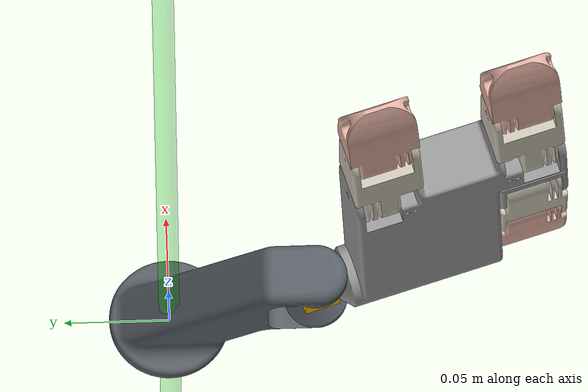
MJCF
<mujoco model="onshape">
    <compiler angle="radian" />
    <size njmax="500" nconmax="100" />
    <asset>
        <mesh name="forearm" file="meshes/sslim_gripper/forearm.stl" />
        <mesh name="box" file="meshes/sslim_gripper/box.stl" />
        <mesh name="finger_base" file="meshes/sslim_gripper/finger_base.stl" />
        <mesh name="proximal_left" file="meshes/sslim_gripper/proximal_left.stl" />
        <mesh name="distal_left" file="meshes/sslim_gripper/distal_left.stl" />
        <mesh name="proximal_right" file="meshes/sslim_gripper/proximal_right.stl" />
        <mesh name="distal_right" file="meshes/sslim_gripper/distal_right.stl" />
        <mesh name="thumb_base" file="meshes/sslim_gripper/thumb_base.stl" />
        <mesh name="thumb_proximal" file="meshes/sslim_gripper/thumb_proximal.stl" />
        <mesh name="thumb_distal" file="meshes/sslim_gripper/thumb_distal.stl" />
    </asset>
    <actuator>
        <position ctrllimited="true" ctrlrange="-3.14 3.14" joint="wristPitchJoint" kp="100" name="wristPitchJoint" forcelimited="true" forcerange="-20 20"/>
        <position ctrllimited="true" ctrlrange="-3.14 3.14" joint="wristYawJoint" kp="100" name="wristYawJoint" forcelimited="true" forcerange="-20 20"/>
        <position ctrllimited="true" ctrlrange="-3.14 3.14" joint="proximalLeftJoint" kp="100" name="proximalLeftJoint" forcelimited="true" forcerange="-20 20"/>
        <position ctrllimited="true" ctrlrange="-3.14 3.14" joint="distalLeftJoint" kp="100" name="distalLeftJoint" forcelimited="true" forcerange="-20 20"/>
        <position ctrllimited="true" ctrlrange="-3.14 3.14" joint="proximalRightJoint" kp="100" name="proximalRightJoint" forcelimited="true" forcerange="-20 20"/>
        <position ctrllimited="true" ctrlrange="-3.14 3.14" joint="distalRightJoint" kp="100" name="distalRightJoint" forcelimited="true" forcerange="-20 20"/>
        <position ctrllimited="true" ctrlrange="-3.14 3.14" joint="thumbSlideJoint" kp="1000" name="thumbSlideJoint" forcelimited="true" forcerange="-20 20"/>
        <position ctrllimited="true" ctrlrange="-3.14 3.14" joint="thumbProximalJoint" kp="100" name="thumbProximalJoint" forcelimited="true" forcerange="-20 20"/>
        <position ctrllimited="true" ctrlrange="-3.14 3.14" joint="thumbDistalJoint" kp="100" name="thumbDistalJoint" forcelimited="true" forcerange="-20 20"/>
    </actuator>
    <worldbody>
        <body name="forearm" pos="0 0 0">
            <site name="ft_frame" pos="0 0 0" size="0.01 0.01 0.01" rgba="1 0 0 1" type="sphere" group="1"/>
            <site name="grip_site" pos="0 0 0" size="0.01 0.01 0.01" rgba="1 0 0 0.5" type="sphere" group="1"/>
            <site name="grip_site_cylinder" pos="0 0 0" size="0.005 10" rgba="0 1 0 0.3" type="cylinder" group="1"/>
            <geom pos="0 -0.175762 0.154323" type="mesh" contype="0" conaffinity="0" group="1" rgba="0.34902 0.376471 0.4 1" mesh="forearm" />
            <geom pos="0 -0.175762 0.154323" type="mesh" rgba="0.34902 0.376471 0.4 1" mesh="forearm" />
            <body name="box" pos="0 -0.0697616 0.0413234" quat="1.31337e-06 0.989884 0.141876 1.88241e-07">
                <inertial pos="0 0.000550903 -0.009" quat="0.5 0.5 0.5 0.5" mass="0.00525901" diaginertia="2.97238e-07 2.93441e-07 2.8019e-07" />
                <joint name="wristPitchJoint" pos="0 0 0" axis="0 0 1" limited="true" range="-1.5708 1.5708" damping="0.5" />
                <geom pos="0 0.106 -0.113" quat="1.32679e-06 1 0 0" type="mesh" contype="0" conaffinity="0" group="1" rgba="0.980392 0.713725 0.00392157 1" mesh="box" />
                <geom pos="0 0.106 -0.113" quat="1.32679e-06 1 0 0" type="mesh" rgba="0.980392 0.713725 0.00392157 1" mesh="box" />
                <body name="finger_base" pos="0 0.009 -0.009" quat="0.70635 0.706353 -0.0326759 0.032676">
                    <inertial pos="-7.02522e-09 -0.0458078 -0.0469358" quat="0.612698 0.790317 0 0" mass="0.263181" diaginertia="0.000456745 0.000348773 0.000146834" />
                    <joint name="wristYawJoint" pos="0 0 0" axis="0 0 1" limited="true" range="-3.14159 3.14159" damping="0.5" />
                    <geom pos="0 -0.104 -0.097" quat="0.707105 0.707108 0 0" type="mesh" contype="0" conaffinity="0" group="1" rgba="0.6 0.6 0.6 1" mesh="finger_base" />
                    <geom pos="0 -0.104 -0.097" quat="0.707105 0.707108 0 0" type="mesh" rgba="0.6 0.6 0.6 1" mesh="finger_base" />
                    <body name="proximal_left" pos="0 -0.104 -0.11" quat="1.32679e-06 -1 0 0">
                        <inertial pos="1.99534e-09 0.0171572 -0.0115186" quat="0.755644 0.654983 8.74814e-07 -1.00926e-06" mass="0.0345732" diaginertia="1.13395e-05 1.04205e-05 4.73735e-06" />
                        <joint name="proximalLeftJoint" pos="0 0 0" axis="0 0 1" limited="true" range="-1.5708 1.5708" damping="0.5" />
                        <geom pos="0 0 -0.013" quat="0.707105 -0.707108 0 0" type="mesh" contype="0" conaffinity="0" group="1" rgba="0.8 0.776471 0.713725 1" mesh="proximal_left" />
                        <geom pos="0 0 -0.013" quat="0.707105 -0.707108 0 0" type="mesh" rgba="0.8 0.776471 0.713725 1" mesh="proximal_left" />
                        <body name="distal_left" pos="0 0.045 0">
                            <inertial pos="-8.65838e-06 0.0154507 -0.0128245" quat="0.71455 0.699583 0.000843371 -0.00125721" mass="0.0267849" diaginertia="7.71431e-06 6.44236e-06 2.85663e-06" />
                            <joint name="distalLeftJoint" pos="0 0 0" axis="0 0 1" limited="true" range="-1.5708 1.5708" damping="0.5" />
                            <geom pos="0 -0.045 -0.013" quat="0.707105 -0.707108 0 0" type="mesh" contype="0" conaffinity="0" group="1" rgba="0.890196 0.698039 0.639216 1" mesh="distal_left" />
                            <geom pos="0 -0.045 -0.013" quat="0.707105 -0.707108 0 0" type="mesh" rgba="0.890196 0.698039 0.639216 1" mesh="distal_left" />
                        </body>
                    </body>
                    <body name="proximal_right" pos="0 -0.104 -0.014">
                        <inertial pos="3.90829e-09 -0.0171529 -0.0115175" quat="0.655072 0.755567 1.18729e-06 -1.02937e-06" mass="0.0345675" diaginertia="1.13426e-05 1.04233e-05 4.73725e-06" />
                        <joint name="proximalRightJoint" pos="0 0 0" axis="0 0 1" limited="true" range="-1.5708 1.5708" damping="0.5" />
                        <geom pos="0 0 -0.083" quat="0.707105 0.707108 0 0" type="mesh" contype="0" conaffinity="0" group="1" rgba="0.8 0.776471 0.713725 1" mesh="proximal_right" />
                        <geom pos="0 0 -0.083" quat="0.707105 0.707108 0 0" type="mesh" rgba="0.8 0.776471 0.713725 1" mesh="proximal_right" />
                        <body name="distal_right" pos="0 -0.045 0">
                            <inertial pos="6.992e-10 -0.0154703 -0.012805" quat="0.700335 0.713815 1.61631e-08 1.44482e-06" mass="0.0268187" diaginertia="7.73491e-06 6.45631e-06 2.86686e-06" />
                            <joint name="distalRightJoint" pos="0 0 0" axis="0 0 1" limited="true" range="-1.5708 1.5708" damping="0.5" />
                            <geom pos="0 0.045 -0.083" quat="0.707105 0.707108 0 0" type="mesh" contype="0" conaffinity="0" group="1" rgba="0.890196 0.698039 0.639216 1" mesh="distal_right" />
                            <geom pos="0 0.045 -0.083" quat="0.707105 0.707108 0 0" type="mesh" rgba="0.890196 0.698039 0.639216 1" mesh="distal_right" />
                        </body>
                    </body>
                    <body name="thumb_base" pos="0 -0.085 -0.08" quat="0.499998 0.5 -0.5 0.500002">
                        <inertial pos="-0.0164306 0 -0.0121333" quat="0.99939 0.0349179 0 0" mass="0.0116768" diaginertia="2.79506e-06 2.42573e-06 1.76999e-06" />
                        <joint name="thumbSlideJoint" pos="0 0 0" axis="0 0 1" type="slide" limited="true" range="-0.065 0" damping="0.5" />
                        <geom pos="-0.0025 0 -0.019" quat="0.499998 -0.5 -0.5 -0.500002" type="mesh" contype="0" conaffinity="0" group="1" rgba="0.6 0.6 0.6 1" mesh="thumb_base" />
                        <geom pos="-0.0025 0 -0.019" quat="0.499998 -0.5 -0.5 -0.500002" type="mesh" rgba="0.6 0.6 0.6 1" mesh="thumb_base" />
                        <body name="thumb_proximal" pos="-0.031 0 -0.019" quat="0.707105 0 -0.707108 0">
                            <inertial pos="-0.0158885 -4.7044e-08 -0.0142305" quat="0.505461 0.494478 0.494483 0.505458" mass="0.0255561" diaginertia="7.47005e-06 6.74416e-06 4.25897e-06" />
                            <joint name="thumbProximalJoint" pos="0 0 0" axis="0 0 1" limited="true" range="-1.5708 1.5708" damping="0.5" />
                            <geom pos="0 0 -0.0285" quat="0.707105 -0.707108 0 0" type="mesh" contype="0" conaffinity="0" group="1" rgba="0.8 0.776471 0.713725 1" mesh="thumb_proximal" />
                            <geom pos="0 0 -0.0285" quat="0.707105 -0.707108 0 0" type="mesh" rgba="0.8 0.776471 0.713725 1" mesh="thumb_proximal" />
                            <body name="thumb_distal" pos="-0.04 0 0">
                                <inertial pos="-0.0145875 1.55149e-08 -0.014134" quat="0.502964 0.497018 0.497018 0.502964" mass="0.0281605" diaginertia="7.72315e-06 6.22689e-06 2.9861e-06" />
                                <joint name="thumbDistalJoint" pos="0 0 0" axis="0 0 1" limited="true" range="-1.5708 1.5708" damping="0.5" />
                                <geom pos="0.04 0 -0.0285" quat="0.707105 -0.707108 0 0" type="mesh" contype="0" conaffinity="0" group="1" rgba="0.890196 0.698039 0.639216 1" mesh="thumb_distal" />
                                <geom pos="0.04 0 -0.0285" quat="0.707105 -0.707108 0 0" type="mesh" rgba="0.890196 0.698039 0.639216 1" mesh="thumb_distal" />
                            </body>
                        </body>
                    </body>
                </body>
            </body>
        </body>
    </worldbody>
    <sensor>
        <force name="force_ee" site="ft_frame"/>
        <torque name="torque_ee" site="ft_frame"/>
    </sensor>
</mujoco>
